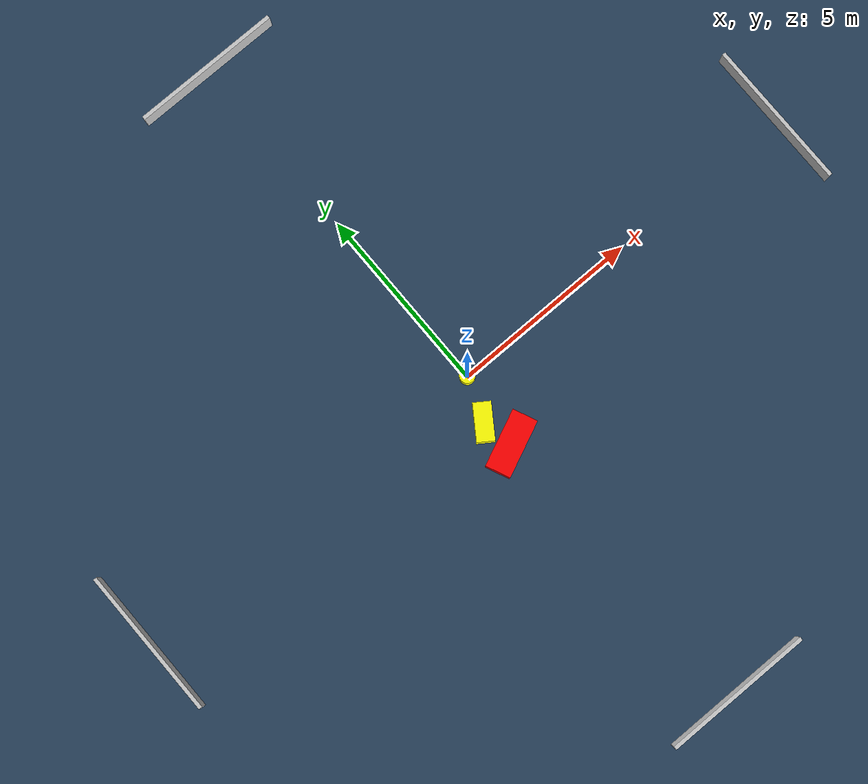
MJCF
<?xml version="1.0" ?>
<mujoco model="generated_environment">
  <option timestep="0.01" integrator="RK4" cone="elliptic"/>
  <default>
    <geom density="1"/>
  </default>
  <asset>
    <texture builtin="gradient" height="3072" name="skybox" rgb1="0.3 0.5 0.7" rgb2="0 0 0" type="skybox" width="512"/>
    <texture builtin="checker" height="300" name="groundplane" rgb1="0.2 0.3 0.4" rgb2="0.1 0.2 0.3" type="2d" width="300"/>
    <material name="groundplane" reflectance="0.2" texrepeat="5 5" texture="groundplane"/>
  </asset>
  <worldbody>
    <light dir="0 0 -1" directional="true" pos="0 0 1.5"/>
    <geom condim="3" friction="0.5 0.005 0.001" material="groundplane" name="floor" pos="0 0 0" size="0 0 0.05" type="plane"/>
    <body name="walls">
      <geom name="wall_1" condim="4" pos="-10.0 0.0 0.3" rgba="0.800000011920929 0.800000011920929 0.800000011920929 1.0" size="0.05 2.0 0.3" type="box"/>
      <geom name="wall_2" condim="4" pos="10.0 0.0 0.3" rgba="0.800000011920929 0.800000011920929 0.800000011920929 1.0" size="0.05 2.0 0.3" type="box"/>
      <geom name="wall_3" condim="4" pos="0.0 -10.0 0.3" rgba="0.800000011920929 0.800000011920929 0.800000011920929 1.0" size="2.0 0.05 0.3" type="box"/>
      <geom name="wall_4" condim="4" pos="0.0 10.0 0.3" rgba="0.800000011920929 0.800000011920929 0.800000011920929 1.0" size="2.0 0.05 0.3" type="box"/>
    </body>
    <body name="robot">
      <joint name="joint_x" type="slide" pos="0 0 0" axis="1 0 0"/>
      <joint name="joint_y" type="slide" pos="0 0 0" axis="0 1 0"/>
      <geom name="robot" type="cylinder" pos="0.0 0.0 0.2" size="0.2 0.2 0.0" mass="5.0" friction="1.0 0.005 0.0001" condim="4" rgba="1.0 1.0 0.0 1.0"/>
    </body>
    <body name="obstacle_1_movable">
      <geom name="obstacle_1_movable" condim="4" pos="-0.43575665229353583 -1.1349878260844957 0.3" euler="0 0 325.8386749482905" friction="0.0 0.005 0.001" rgba="1.0 1.0 0.0 1.0" size="0.23103640258212207 0.4873979435082308 0.3" type="box" mass="0.1"/>
      <joint type="free"/>
    </body>
    <body name="obstacle_2_static">
      <geom name="obstacle_2_static" condim="4" pos="-0.2634371096248696 -1.970212296421021 0.3" euler="0 0 293.94757128070285" friction="0.0 0.005 0.001" rgba="1.0 0.0 0.0 1.0" size="0.33469000980451746 0.7670478471045201 0.3" type="box"/>
    </body>
  </worldbody>
  <actuator>
    <motor name="actuator_x" joint="joint_x" gear="1" ctrlrange="-1 1"/>
    <motor name="actuator_y" joint="joint_y" gear="1" ctrlrange="-1 1"/>
  </actuator>
</mujoco>
